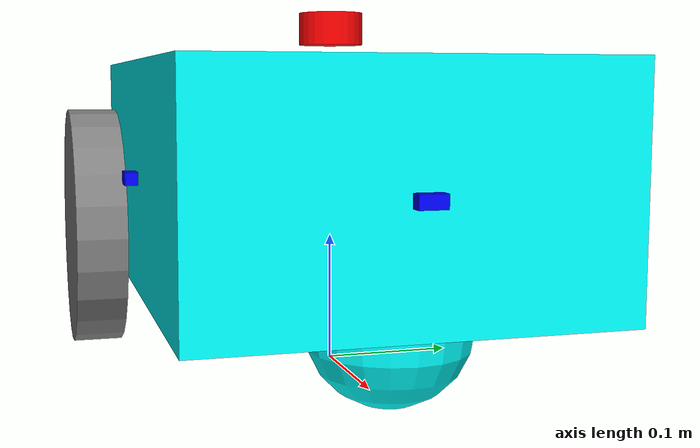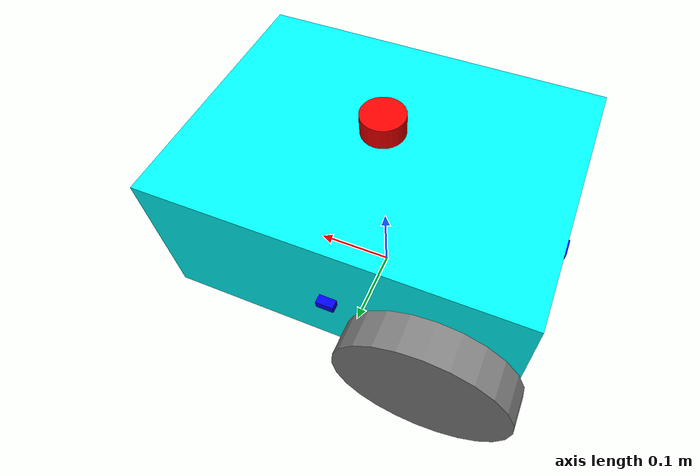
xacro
<?xml version="1.0"?>
<robot xmlns:xacro="http://www.ros.org/wiki/xacro" name="diffbot">

    <!-- Include the main robot description -->
    <xacro:include filename="$(find diffbot_description)/urdf/diffbot.urdf.xacro" />

    <!-- Include Gazebo-specific configurations -->
    <xacro:include filename="$(find diffbot_description)/urdf/diffbot_gazebo.xacro" />

</robot>

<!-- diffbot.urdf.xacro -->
<robot xmlns:xacro="http://www.ros.org/wiki/xacro" name="diffbot">

    <!-- Define robot parameters -->
    <xacro:property name="base_width" value="0.31"/>
    <xacro:property name="base_length" value="0.42"/>
    <xacro:property name="base_height" value="0.18"/>

    <xacro:property name="wheel_radius" value="0.10"/>
    <xacro:property name="wheel_width" value="0.04"/>
    <xacro:property name="wheel_ygap" value="0.025"/>
    <xacro:property name="wheel_zoff" value="0.05"/>
    <xacro:property name="wheel_xoff" value="0.12"/>

    <xacro:property name="caster_xoff" value="0.14"/>

    <!-- Define intertial property macros  -->
    <xacro:macro name="box_inertia" params="m w h d">
        <inertial>
            <origin xyz="0 0 0" rpy="${pi/2} 0 ${pi/2}"/>
            <mass value="${m}"/>
            <inertia ixx="${(m/12) * (h*h + d*d)}" ixy="0.0" ixz="0.0" iyy="${(m/12) * (w*w + d*d)}" iyz="0.0" izz="${(m/12) * (w*w + h*h)}"/>
        </inertial>
    </xacro:macro>

    <xacro:macro name="cylinder_inertia" params="m r h">
        <inertial>
            <origin xyz="0 0 0" rpy="${pi/2} 0 0" />
            <mass value="${m}"/>
            <inertia ixx="${(m/12) * (3*r*r + h*h)}" ixy = "0" ixz = "0" iyy="${(m/12) * (3*r*r + h*h)}" iyz = "0" izz="${(m/2) * (r*r)}"/>
        </inertial>
    </xacro:macro>

    <xacro:macro name="sphere_inertia" params="m r">
        <inertial>
            <mass value="${m}"/>
            <inertia ixx="${(2/5) * m * (r*r)}" ixy="0.0" ixz="0.0" iyy="${(2/5) * m * (r*r)}" iyz="0.0" izz="${(2/5) * m * (r*r)}"/>
        </inertial>
    </xacro:macro>

    <!-- Robot Base -->
    <link name="base_link">
        <visual>
            <geometry>
                <box size="${base_length} ${base_width} ${base_height}"/>
            </geometry>
            <material name="Cyan">
                <color rgba="0 1.0 1.0 1.0"/>
            </material>
        </visual>

        <collision>
            <geometry>
                <box size="${base_length} ${base_width} ${base_height}"/>
            </geometry>
        </collision>

        <xacro:box_inertia m="15" w="${base_width}" d="${base_length}" h="${base_height}"/>
    </link>

    <!-- Robot Footprint -->
    <link name="base_footprint"/>

    <joint name="base_joint" type="fixed">
        <parent link="base_footprint"/>
        <child link="base_link"/>
        <origin xyz="0.0 0.0 ${(wheel_radius+wheel_zoff)}" rpy="0 0 0"/>
    </joint>

    <!-- Wheels -->
    <xacro:macro name="wheel" params="prefix x_reflect y_reflect">
        <link name="${prefix}_link">
            <visual>
                <origin xyz="0 0 0" rpy="${pi/2} 0 0"/>
                <geometry>
                    <cylinder radius="${wheel_radius}" length="${wheel_width}"/>
                </geometry>
                <material name="Gray">
                    <color rgba="0.5 0.5 0.5 1.0"/>
                </material>
            </visual>

            <collision>
                <origin xyz="0 0 0" rpy="${pi/2} 0 0"/>
                <geometry>
                    <cylinder radius="${wheel_radius}" length="${wheel_width}"/>
                </geometry>
            </collision>

            <xacro:cylinder_inertia m="0.5" r="${wheel_radius}" h="${wheel_width}"/>
        </link>

        <joint name="${prefix}_joint" type="continuous">
            <parent link="base_link"/>
            <child link="${prefix}_link"/>
            <origin xyz="${x_reflect*wheel_xoff} ${y_reflect*(base_width/2+wheel_ygap)} ${-wheel_zoff}" rpy="0 0 0"/>
            <axis xyz="0 1 0"/>
        </joint>
    </xacro:macro>

    <xacro:wheel prefix="drivewhl_l" x_reflect="-1" y_reflect="1" />
    <xacro:wheel prefix="drivewhl_r" x_reflect="-1" y_reflect="-1" />

    <!-- Caster Wheel -->
    <link name="front_caster">
        <visual>
            <geometry>
                <sphere radius="${(wheel_radius+wheel_zoff-(base_height/2))}"/>
            </geometry>
            <material name="Cyan">
                <color rgba="0 1.0 1.0 1.0"/>
            </material>
        </visual>

        <collision>
            <origin xyz="0 0 0" rpy="0 0 0"/>
            <geometry>
                <sphere radius="${(wheel_radius+wheel_zoff-(base_height/2))}"/>
            </geometry>
        </collision>

        <xacro:sphere_inertia m="0.5" r="${(wheel_radius+wheel_zoff-(base_height/2))}"/>
    </link>

    <joint name="caster_joint" type="fixed">
        <parent link="base_link"/>
        <child link="front_caster"/>
        <origin xyz="${caster_xoff} 0.0 ${-(base_height/2)}" rpy="0 0 0"/>
    </joint>

    <!-- Laser Scanner -->
    <link name="laser">
        <visual>
            <origin xyz="0 0 0" rpy="0 0 0"/>
            <geometry>
                <cylinder radius="0.025" length="0.025"/>
            </geometry>
            <material name="Red">
                <color rgba="1.0 0.0 0.0 1.0"/>
            </material>
        </visual>

        <collision>
            <origin xyz="0 0 0" rpy="0 0 0"/>
            <geometry>
                <cylinder radius="0.025" length="0.025"/>
            </geometry>
        </collision>

        <xacro:cylinder_inertia m="0.1" r="0.025" h="0.025"/>
    </link>

    <joint name="laser_joint" type="fixed">
        <parent link="base_link"/>
        <child link="laser"/>
        <origin xyz="0 0 ${base_height/2 + 0.025}" rpy="0 0 0"/>
    </joint>

    <!-- Ultrasonic Sensors -->
    <xacro:macro name="ultrasonic_sensor" params="name parent xyz rpy">
        <link name="${name}">
            <visual>
                <origin xyz="0 0 0" rpy="0 0 0"/>
                <geometry>
                    <box size="0.02 0.02 0.01"/>
                </geometry>
                <material name="Blue">
                    <color rgba="0.0 0.0 1.0 1.0"/>
                </material>
            </visual>

            <collision>
                <origin xyz="0 0 0" rpy="0 0 0"/>
                <geometry>
                    <box size="0.02 0.02 0.01"/>
                </geometry>
            </collision>

            <xacro:box_inertia m="0.05" w="0.02" d="0.02" h="0.01"/>
        </link>

        <joint name="${name}_joint" type="fixed">
            <parent link="${parent}"/>
            <child link="${name}"/>
            <origin xyz="${xyz}" rpy="${rpy}"/>
        </joint>
    </xacro:macro>

    <!-- Mount ultrasonic sensors around the robot -->
    <xacro:ultrasonic_sensor name="ultrasonic_front" parent="base_link" xyz="0.21 0 0" rpy="0 0 0"/>
    <xacro:ultrasonic_sensor name="ultrasonic_rear" parent="base_link" xyz="-0.21 0 0" rpy="0 0 ${pi}"/>
    <xacro:ultrasonic_sensor name="ultrasonic_left" parent="base_link" xyz="0 0.155 0" rpy="0 0 ${pi/2}"/>
    <xacro:ultrasonic_sensor name="ultrasonic_right" parent="base_link" xyz="0 -0.155 0" rpy="0 0 -${pi/2}"/>

</robot>
